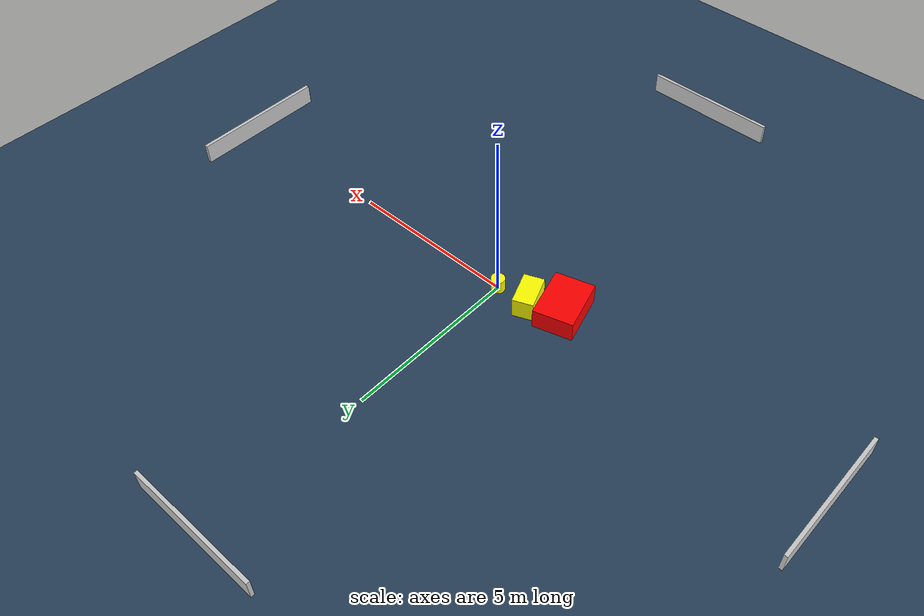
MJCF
<?xml version="1.0" ?>
<mujoco model="generated_environment">
  <option timestep="0.01" integrator="RK4" cone="elliptic"/>
  <default>
    <geom density="1"/>
  </default>
  <asset>
    <texture builtin="gradient" height="3072" name="skybox" rgb1="0.3 0.5 0.7" rgb2="0 0 0" type="skybox" width="512"/>
    <texture builtin="checker" height="300" name="groundplane" rgb1="0.2 0.3 0.4" rgb2="0.1 0.2 0.3" type="2d" width="300"/>
    <material name="groundplane" reflectance="0.2" texrepeat="5 5" texture="groundplane"/>
  </asset>
  <worldbody>
    <light dir="0 0 -1" directional="true" pos="0 0 1.5"/>
    <geom condim="3" friction="0.5 0.005 0.001" material="groundplane" name="floor" pos="0 0 0" size="0 0 0.05" type="plane"/>
    <body name="walls">
      <geom name="wall_1" condim="4" pos="-10.0 0.0 0.3" rgba="0.800000011920929 0.800000011920929 0.800000011920929 1.0" size="0.05 2.0 0.3" type="box"/>
      <geom name="wall_2" condim="4" pos="10.0 0.0 0.3" rgba="0.800000011920929 0.800000011920929 0.800000011920929 1.0" size="0.05 2.0 0.3" type="box"/>
      <geom name="wall_3" condim="4" pos="0.0 -10.0 0.3" rgba="0.800000011920929 0.800000011920929 0.800000011920929 1.0" size="2.0 0.05 0.3" type="box"/>
      <geom name="wall_4" condim="4" pos="0.0 10.0 0.3" rgba="0.800000011920929 0.800000011920929 0.800000011920929 1.0" size="2.0 0.05 0.3" type="box"/>
    </body>
    <body name="robot">
      <joint name="joint_x" type="slide" pos="0 0 0" axis="1 0 0"/>
      <joint name="joint_y" type="slide" pos="0 0 0" axis="0 1 0"/>
      <geom name="robot" type="cylinder" pos="0.0 0.0 0.2" size="0.2 0.2 0.0" mass="5.0" friction="1.0 0.005 0.0001" condim="4" rgba="1.0 1.0 0.0 1.0"/>
    </body>
    <body name="obstacle_1_movable">
      <geom name="obstacle_1_movable" condim="4" pos="-0.9913199510057261 -0.09739810427282768 0.3" euler="0 0 112.16042989314333" friction="0.0 0.005 0.001" rgba="1.0 1.0 0.0 1.0" size="0.4915734813356661 0.29343163290604796 0.3" type="box" mass="0.1"/>
      <joint type="free"/>
    </body>
    <body name="obstacle_2_static">
      <geom name="obstacle_2_static" condim="4" pos="-1.8769367256074703 -0.48743453121910363 0.3" euler="0 0 106.04444692098633" friction="0.0 0.005 0.001" rgba="1.0 0.0 0.0 1.0" size="0.7555895793561183 0.5693653626744373 0.3" type="box"/>
    </body>
  </worldbody>
  <actuator>
    <motor name="actuator_x" joint="joint_x" gear="1" ctrlrange="-1 1"/>
    <motor name="actuator_y" joint="joint_y" gear="1" ctrlrange="-1 1"/>
  </actuator>
</mujoco>
